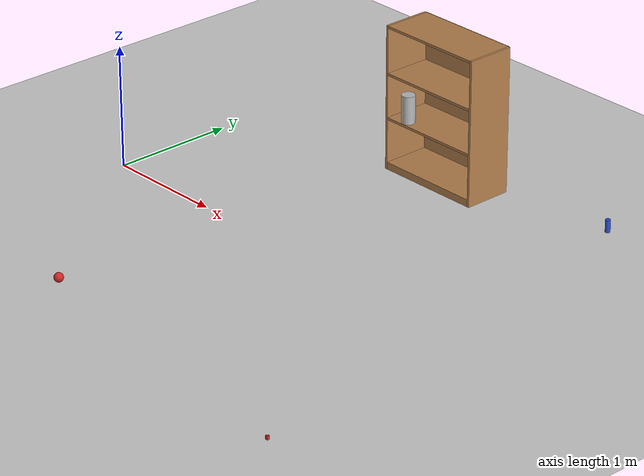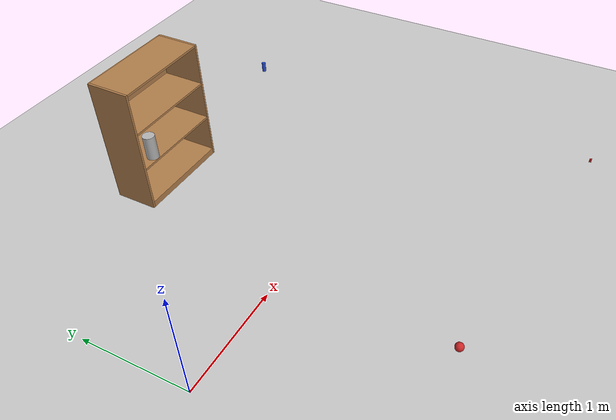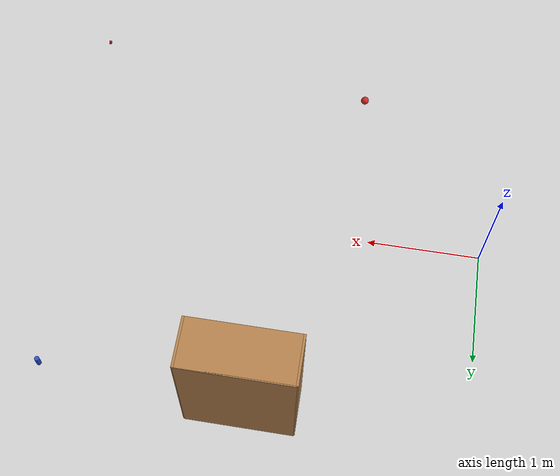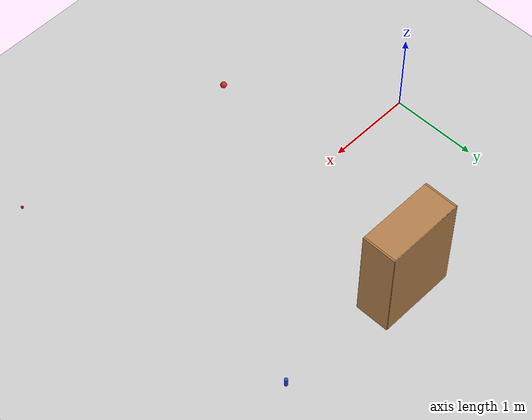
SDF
<sdf version="1.6">
 <world name="default">
  <model name="ground_plane">
   <static>1</static>
   <link name="link">
    <collision name="collision">
     <geometry><plane><normal>0 0 1</normal><size>100 100</size></plane></geometry>
     <surface><friction><ode><mu>100</mu><mu2>50</mu2></ode></friction></surface>
    </collision>
    <visual name="visual">
     <cast_shadows>0</cast_shadows>
     <geometry><plane><normal>0 0 1</normal><size>100 100</size></plane></geometry>
     <material>
      <script><uri>file://media/materials/scripts/gazebo.material</uri><name>Gazebo/Grey</name></script>
     </material>
    </visual>
   </link>
  </model>
  <model name="bookshelf">
   <static>1</static>
   <link name="link">
    <inertial><mass>1</mass></inertial>
    <collision name="back">
     <pose>0 0.005 0.6 0 -0 0</pose>
     <geometry><box><size>0.9 0.01 1.2</size></box></geometry>
    </collision>
    <visual name="visual1">
     <pose>0 0.005 0.6 0 -0 0</pose>
     <geometry><box><size>0.9 0.01 1.2</size></box></geometry>
     <material>
      <script><uri>file://media/materials/scripts/gazebo.material</uri><name>Gazebo/Wood</name></script>
     </material>
    </visual>
    <collision name="left_side">
     <pose>0.45 -0.195 0.6 0 -0 0</pose>
     <geometry><box><size>0.02 0.4 1.2</size></box></geometry>
    </collision>
    <visual name="visual2">
     <pose>0.45 -0.195 0.6 0 -0 0</pose>
     <geometry><box><size>0.02 0.4 1.2</size></box></geometry>
     <material>
      <script><uri>file://media/materials/scripts/gazebo.material</uri><name>Gazebo/Wood</name></script>
     </material>
    </visual>
    <collision name="right_side">
     <pose>-0.45 -0.195 0.6 0 -0 0</pose>
     <geometry><box><size>0.02 0.4 1.2</size></box></geometry>
    </collision>
    <visual name="visual3">
     <pose>-0.45 -0.195 0.6 0 -0 0</pose>
     <geometry><box><size>0.02 0.4 1.2</size></box></geometry>
     <material>
      <script><uri>file://media/materials/scripts/gazebo.material</uri><name>Gazebo/Wood</name></script>
     </material>
    </visual>
    <collision name="bottom">
     <pose>0 -0.195 0.03 0 -0 0</pose>
     <geometry><box><size>0.88 0.4 0.06</size></box></geometry>
    </collision>
    <visual name="visual4">
     <pose>0 -0.195 0.03 0 -0 0</pose>
     <geometry><box><size>0.88 0.4 0.06</size></box></geometry>
     <material>
      <script><uri>file://media/materials/scripts/gazebo.material</uri><name>Gazebo/Wood</name></script>
     </material>
    </visual>
    <collision name="top">
     <pose>0 -0.195 1.19 0 -0 0</pose>
     <geometry><box><size>0.88 0.4 0.02</size></box></geometry>
    </collision>
    <visual name="visual5">
     <pose>0 -0.195 1.19 0 -0 0</pose>
     <geometry><box><size>0.88 0.4 0.02</size></box></geometry>
     <material>
      <script><uri>file://media/materials/scripts/gazebo.material</uri><name>Gazebo/Wood</name></script>
     </material>
    </visual>
    <collision name="low_shelf">
     <pose>0 -0.195 0.43 0 -0 0</pose>
     <geometry><box><size>0.88 0.4 0.02</size></box></geometry>
    </collision>
    <visual name="visual6">
     <pose>0 -0.195 0.43 0 -0 0</pose>
     <geometry><box><size>0.88 0.4 0.02</size></box></geometry>
     <material>
      <script><uri>file://media/materials/scripts/gazebo.material</uri><name>Gazebo/Wood</name></script>
     </material>
    </visual>
    <collision name="high_shelf">
     <pose>0 -0.195 0.8 0 -0 0</pose>
     <geometry><box><size>0.88 0.4 0.02</size></box></geometry>
    </collision>
    <visual name="visual7">
     <pose>0 -0.195 0.8 0 -0 0</pose>
     <geometry><box><size>0.88 0.4 0.02</size></box></geometry>
     <material>
      <script><uri>file://media/materials/scripts/gazebo.material</uri><name>Gazebo/Wood</name></script>
     </material>
    </visual>
   </link>
   <pose>1.85905 1.85884 0 0 -0 0</pose>
  </model>
  <model name="beer_0">
   <link name="link">
    <pose>0 0 0.115 0 -0 0</pose>
    <inertial>
     <mass>0.39</mass>
     <inertia><ixx>0.00058</ixx><ixy>0</ixy><ixz>0</ixz><iyy>0.00058</iyy><iyz>0</iyz><izz>0.00019</izz></inertia>
    </inertial>
    <collision name="collision">
     <geometry><cylinder><radius>0.055</radius><length>0.23</length></cylinder></geometry>
    </collision>
    <visual name="visual">
     <geometry><cylinder><radius>0.055</radius><length>0.23</length></cylinder></geometry>
     <material>
      <script>
       <uri>model://beer/materials/scripts</uri>
       <uri>model://beer/materials/textures</uri>
       <name>Beer/Diffuse</name>
      </script>
     </material>
    </visual>
   </link>
   <pose>1.58661 1.52296 0.440001 1.5e-05 2e-06 0.002038</pose>
  </model>
  <model name="cricket_ball">
   <link name="link">
    <pose>0 0 0.0375 0 -0 0</pose>
    <inertial>
     <mass>0.1467</mass>
     <inertia>
      <ixx>8.25187e-05</ixx>
      <ixy>0</ixy>
      <ixz>0</ixz>
      <iyy>8.25187e-05</iyy>
      <iyz>0</iyz>
      <izz>8.25187e-05</izz>
     </inertia>
    </inertial>
    <collision name="collision">
     <geometry><sphere><radius>0.0375</radius></sphere></geometry>
     <surface>
      <contact>
       <poissons_ratio>0.347</poissons_ratio>
       <elastic_modulus>8.8e+09</elastic_modulus>
       <ode><kp>100000</kp><kd>100</kd><max_vel>100</max_vel><min_depth>0.001</min_depth></ode>
      </contact>
      <friction>
       <torsional>
        <coefficient>1</coefficient>
        <use_patch_radius>0</use_patch_radius>
        <surface_radius>0.01</surface_radius>
       </torsional>
      </friction>
     </surface>
    </collision>
    <visual name="visual">
     <geometry><sphere><radius>0.0375</radius></sphere></geometry>
     <material>
      <script><uri>file://media/materials/scripts/gazebo.material</uri><name>Gazebo/Red</name></script>
     </material>
    </visual>
    <velocity_decay><linear>0</linear><angular>0.005</angular></velocity_decay>
   </link>
   <pose>1.19589 -1.5526 -0.001014 0 -0 0</pose>
  </model>
  <model name="my_box_red">
   <static>0</static>
   <link name="link">
    <collision name="collision">
     <geometry><box><size>0.02 0.02 0.03</size></box></geometry>
     <surface><friction><ode><mu>100000</mu><mu2>50000</mu2></ode></friction></surface>
    </collision>
    <visual name="visual">
     <geometry><box><size>0.02 0.02 0.03</size></box></geometry>
     <material>
      <script><uri>file://media/materials/scripts/gazebo.material</uri><name>Gazebo/Red</name></script>
     </material>
    </visual>
    <inertial>
     <inertia><ixx>1</ixx><ixy>0</ixy><ixz>0</ixz><iyy>1</iyy><iyz>0</iyz><izz>1</izz></inertia>
     <mass>1</mass>
    </inertial>
   </link>
   <pose>3.86287 -1.88828 0.015 -1e-06 -8e-06 0</pose>
  </model>
  <model name="my_cylinder_blue_6">
   <static>0</static>
   <link name="link">
    <collision name="collision">
     <geometry><cylinder><radius>0.02</radius><length>0.1</length></cylinder></geometry>
     <surface><friction><ode><mu>100</mu><mu2>50</mu2></ode></friction></surface>
    </collision>
    <visual name="visual">
     <geometry><cylinder><radius>0.02</radius><length>0.1</length></cylinder></geometry>
     <material>
      <script><uri>file://media/materials/scripts/gazebo.material</uri><name>Gazebo/Blue</name></script>
     </material>
    </visual>
    <inertial>
     <inertia><ixx>1</ixx><ixy>0</ixy><ixz>0</ixz><iyy>1</iyy><iyz>0</iyz><izz>1</izz></inertia>
     <mass>1</mass>
    </inertial>
   </link>
   <pose>3.55987 1.65679 0.250193 0.000777 2.6e-05 -2e-06</pose>
  </model>
 </world>
</sdf>
